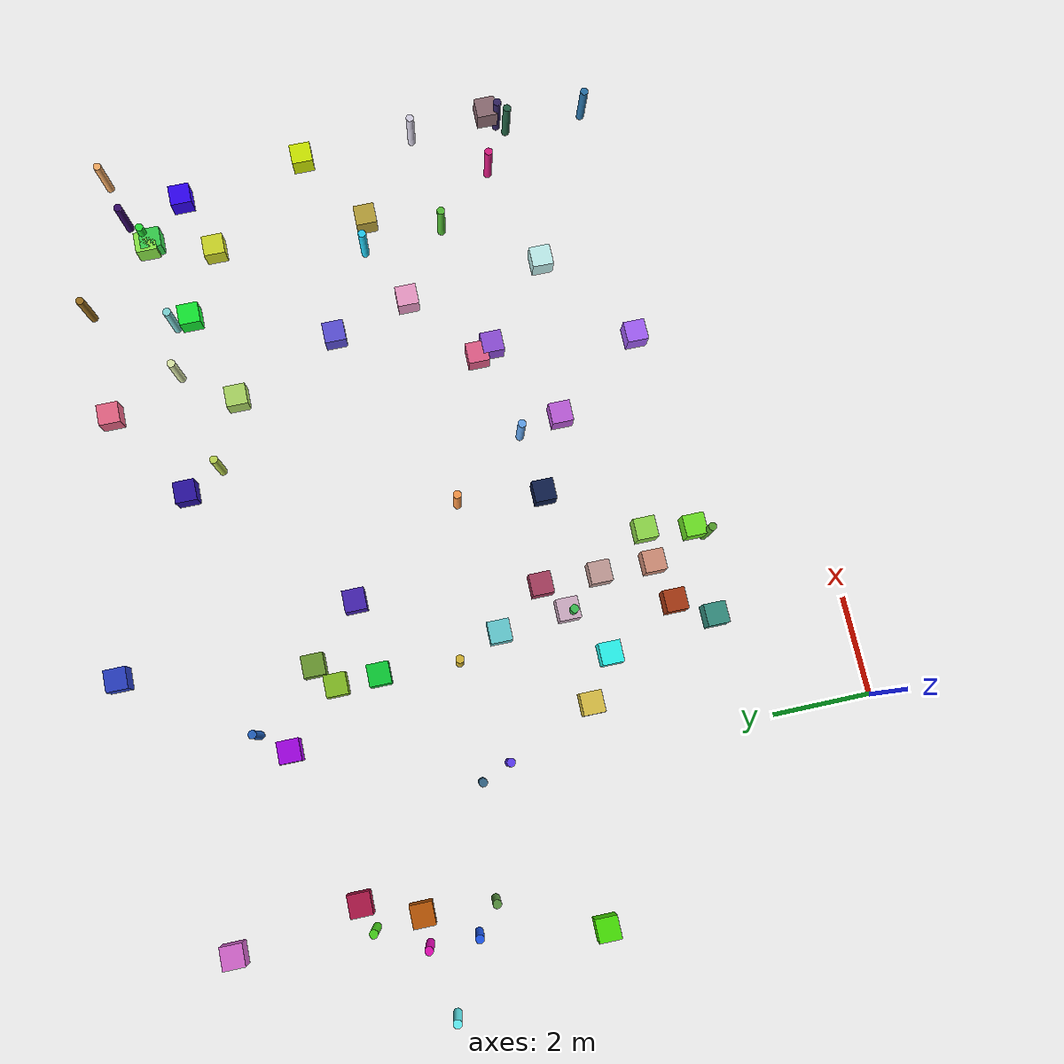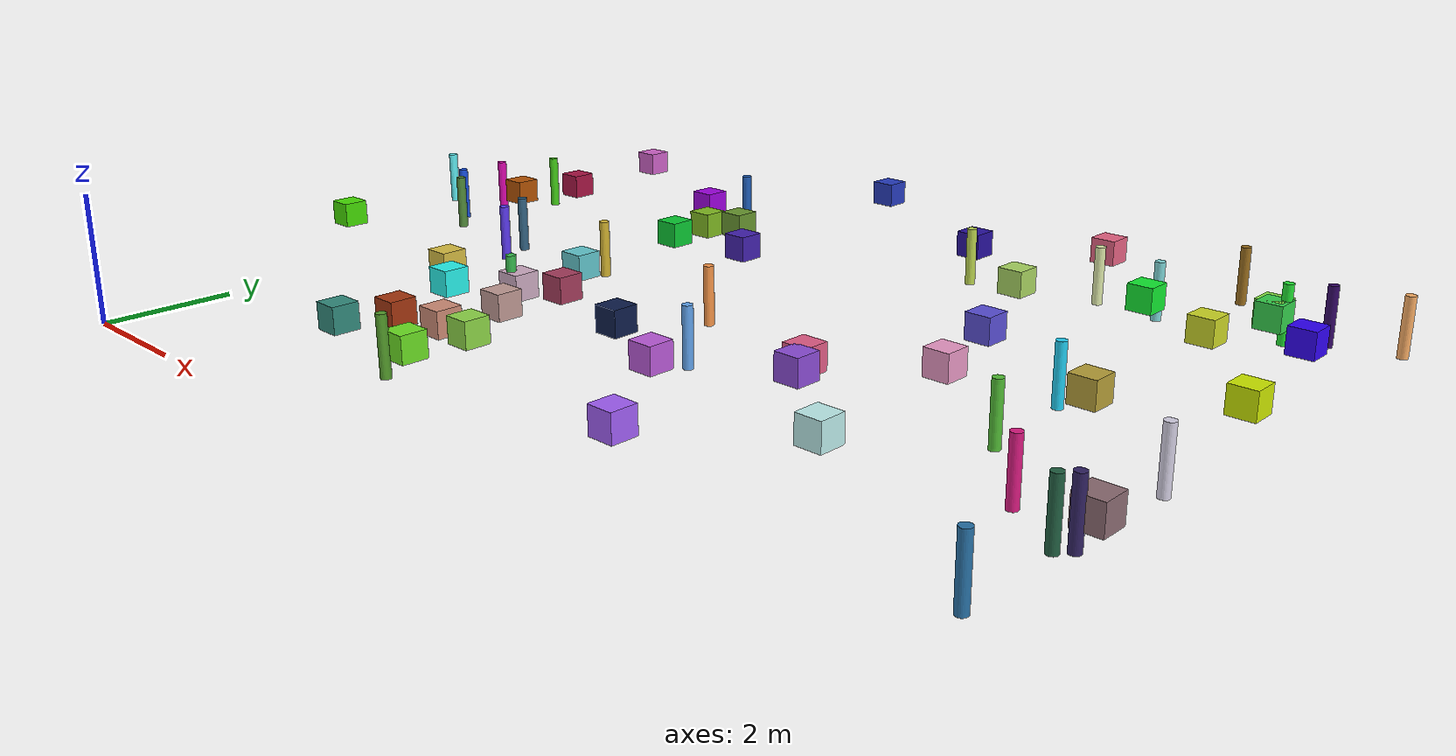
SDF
<sdf version="1.7">
 <world name="warehouse">
  <model name="ground_plane">
   <static>true</static>
   <link name="link">
    <collision name="collision">
     <geometry><plane><normal>0.0 0.0 1</normal><size>1 1</size></plane></geometry>
    </collision>
   </link>
  </model>
  <model name="unit_box_0">
   <static>true</static>
   <pose>2.2 2.64 0 0 0 0</pose>
   <link name="link">
    <collision name="collision">
     <geometry><box><size>0.450000 0.450000 0.450000</size></box></geometry>
    </collision>
    <visual name="visual">
     <geometry><box><size>0.450000 0.450000 0.450000</size></box></geometry>
     <material>
      <ambient>0.2033842654098772 0.556471265459145 0.4994971915833679 1</ambient>
      <diffuse>0.2033842654098772 0.556471265459145 0.4994971915833679 1</diffuse>
      <script><uri>file://media/materials/scripts/gazebo.material</uri><name>Gazebo/RandomColor0</name></script>
     </material>
    </visual>
   </link>
  </model>
  <model name="unit_box_5">
   <static>true</static>
   <pose>3.97 9.73 0 0 0 0</pose>
   <link name="link">
    <collision name="collision">
     <geometry><box><size>0.450000 0.450000 0.450000</size></box></geometry>
    </collision>
    <visual name="visual">
     <geometry><box><size>0.450000 0.450000 0.450000</size></box></geometry>
     <material>
      <ambient>0.2689518017919452 0.13552714101996888 0.6945008653489603 1</ambient>
      <diffuse>0.2689518017919452 0.13552714101996888 0.6945008653489603 1</diffuse>
      <script><uri>file://media/materials/scripts/gazebo.material</uri><name>Gazebo/RandomColor5</name></script>
     </material>
    </visual>
   </link>
  </model>
  <model name="unit_cylinder_6">
   <static>true</static>
   <pose>14.02 4.61 0 0 0 0</pose>
   <link name="link">
    <collision name="collision">
     <geometry><cylinder><radius>0.085000</radius><length>1.000000</length></cylinder></geometry>
    </collision>
    <visual name="visual">
     <geometry><cylinder><radius>0.085000</radius><length>1.000000</length></cylinder></geometry>
     <material>
      <ambient>0.19710142438978373 0.13745172707509656 0.3912315722723817 1</ambient>
      <diffuse>0.19710142438978373 0.13745172707509656 0.3912315722723817 1</diffuse>
      <script><uri>file://media/materials/scripts/gazebo.material</uri><name>Gazebo/RandomColor6</name></script>
     </material>
    </visual>
   </link>
  </model>
  <model name="unit_box_7">
   <static>true</static>
   <pose>2.91 5.54 0 0 0 0</pose>
   <link name="link">
    <collision name="collision">
     <geometry><box><size>0.450000 0.450000 0.450000</size></box></geometry>
    </collision>
    <visual name="visual">
     <geometry><box><size>0.450000 0.450000 0.450000</size></box></geometry>
     <material>
      <ambient>0.8225502708183758 0.6867900643934398 0.7781685932627812 1</ambient>
      <diffuse>0.8225502708183758 0.6867900643934398 0.7781685932627812 1</diffuse>
      <script><uri>file://media/materials/scripts/gazebo.material</uri><name>Gazebo/RandomColor7</name></script>
     </material>
    </visual>
   </link>
  </model>
  <model name="unit_box_9">
   <static>true</static>
   <pose>6.9 12.72 0 0 0 0</pose>
   <link name="link">
    <collision name="collision">
     <geometry><box><size>0.450000 0.450000 0.450000</size></box></geometry>
    </collision>
    <visual name="visual">
     <geometry><box><size>0.450000 0.450000 0.450000</size></box></geometry>
     <material>
      <ambient>0.16291486107056707 0.06930496910042805 0.6325173738668594 1</ambient>
      <diffuse>0.16291486107056707 0.06930496910042805 0.6325173738668594 1</diffuse>
      <script><uri>file://media/materials/scripts/gazebo.material</uri><name>Gazebo/RandomColor9</name></script>
     </material>
    </visual>
   </link>
  </model>
  <model name="unit_cylinder_9">
   <static>true</static>
   <pose>12.91 5.04 0 0 0 0</pose>
   <link name="link">
    <collision name="collision">
     <geometry><cylinder><radius>0.085000</radius><length>1.000000</length></cylinder></geometry>
    </collision>
    <visual name="visual">
     <geometry><cylinder><radius>0.085000</radius><length>1.000000</length></cylinder></geometry>
     <material>
      <ambient>0.8699030829575385 0.10296220234799758 0.5147589166828516 1</ambient>
      <diffuse>0.8699030829575385 0.10296220234799758 0.5147589166828516 1</diffuse>
      <script><uri>file://media/materials/scripts/gazebo.material</uri><name>Gazebo/RandomColor9</name></script>
     </material>
    </visual>
   </link>
  </model>
  <model name="unit_box_10">
   <static>true</static>
   <pose>-1.84 10.73 0 0 0 0</pose>
   <link name="link">
    <collision name="collision">
     <geometry><box><size>0.450000 0.450000 0.450000</size></box></geometry>
    </collision>
    <visual name="visual">
     <geometry><box><size>0.450000 0.450000 0.450000</size></box></geometry>
     <material>
      <ambient>0.6704528873766061 0.0826368071537057 0.27285723767520786 1</ambient>
      <diffuse>0.6704528873766061 0.0826368071537057 0.27285723767520786 1</diffuse>
      <script><uri>file://media/materials/scripts/gazebo.material</uri><name>Gazebo/RandomColor10</name></script>
     </material>
    </visual>
   </link>
  </model>
  <model name="unit_cylinder_10">
   <static>true</static>
   <pose>9.57 12.51 0 0 0 0</pose>
   <link name="link">
    <collision name="collision">
     <geometry><cylinder><radius>0.085000</radius><length>1.000000</length></cylinder></geometry>
    </collision>
    <visual name="visual">
     <geometry><cylinder><radius>0.085000</radius><length>1.000000</length></cylinder></geometry>
     <material>
      <ambient>0.885615581655553 0.9327394628002798 0.6782206357978003 1</ambient>
      <diffuse>0.885615581655553 0.9327394628002798 0.6782206357978003 1</diffuse>
      <script><uri>file://media/materials/scripts/gazebo.material</uri><name>Gazebo/RandomColor10</name></script>
     </material>
    </visual>
   </link>
  </model>
  <model name="unit_cylinder_11">
   <static>true</static>
   <pose>13.84 4.43 0 0 0 0</pose>
   <link name="link">
    <collision name="collision">
     <geometry><cylinder><radius>0.085000</radius><length>1.000000</length></cylinder></geometry>
    </collision>
    <visual name="visual">
     <geometry><cylinder><radius>0.085000</radius><length>1.000000</length></cylinder></geometry>
     <material>
      <ambient>0.1335643459164848 0.3807918756871833 0.26239654531750034 1</ambient>
      <diffuse>0.1335643459164848 0.3807918756871833 0.26239654531750034 1</diffuse>
      <script><uri>file://media/materials/scripts/gazebo.material</uri><name>Gazebo/RandomColor11</name></script>
     </material>
    </visual>
   </link>
  </model>
  <model name="unit_box_14">
   <static>true</static>
   <pose>6.96 4.77 0 0 0 0</pose>
   <link name="link">
    <collision name="collision">
     <geometry><box><size>0.450000 0.450000 0.450000</size></box></geometry>
    </collision>
    <visual name="visual">
     <geometry><box><size>0.450000 0.450000 0.450000</size></box></geometry>
     <material>
      <ambient>0.7507526792527157 0.36376964360259534 0.8690091851841476 1</ambient>
      <diffuse>0.7507526792527157 0.36376964360259534 0.8690091851841476 1</diffuse>
      <script><uri>file://media/materials/scripts/gazebo.material</uri><name>Gazebo/RandomColor14</name></script>
     </material>
    </visual>
   </link>
  </model>
  <model name="unit_box_18">
   <static>true</static>
   <pose>1.29 11.55 0 0 0 0</pose>
   <link name="link">
    <collision name="collision">
     <geometry><box><size>0.450000 0.450000 0.450000</size></box></geometry>
    </collision>
    <visual name="visual">
     <geometry><box><size>0.450000 0.450000 0.450000</size></box></geometry>
     <material>
      <ambient>0.6316145346749856 0.011948659295485164 0.8916331385772003 1</ambient>
      <diffuse>0.6316145346749856 0.011948659295485164 0.8916331385772003 1</diffuse>
      <script><uri>file://media/materials/scripts/gazebo.material</uri><name>Gazebo/RandomColor18</name></script>
     </material>
    </visual>
   </link>
  </model>
  <model name="unit_cylinder_18">
   <static>true</static>
   <pose>14.3 13.37 0 0 0 0</pose>
   <link name="link">
    <collision name="collision">
     <geometry><cylinder><radius>0.085000</radius><length>1.000000</length></cylinder></geometry>
    </collision>
    <visual name="visual">
     <geometry><cylinder><radius>0.085000</radius><length>1.000000</length></cylinder></geometry>
     <material>
      <ambient>0.9898269840798938 0.6891691866875646 0.4007298907136404 1</ambient>
      <diffuse>0.9898269840798938 0.6891691866875646 0.4007298907136404 1</diffuse>
      <script><uri>file://media/materials/scripts/gazebo.material</uri><name>Gazebo/RandomColor18</name></script>
     </material>
    </visual>
   </link>
  </model>
  <model name="unit_box_19">
   <static>true</static>
   <pose>-2.27 9.59 0 0 0 0</pose>
   <link name="link">
    <collision name="collision">
     <geometry><box><size>0.450000 0.450000 0.450000</size></box></geometry>
    </collision>
    <visual name="visual">
     <geometry><box><size>0.450000 0.450000 0.450000</size></box></geometry>
     <material>
      <ambient>0.7203460917915703 0.333728805976085 0.017275516002810187 1</ambient>
      <diffuse>0.7203460917915703 0.333728805976085 0.017275516002810187 1</diffuse>
      <script><uri>file://media/materials/scripts/gazebo.material</uri><name>Gazebo/RandomColor19</name></script>
     </material>
    </visual>
   </link>
  </model>
  <model name="unit_cylinder_19">
   <static>true</static>
   <pose>7.35 11.98 0 0 0 0</pose>
   <link name="link">
    <collision name="collision">
     <geometry><cylinder><radius>0.085000</radius><length>1.000000</length></cylinder></geometry>
    </collision>
    <visual name="visual">
     <geometry><cylinder><radius>0.085000</radius><length>1.000000</length></cylinder></geometry>
     <material>
      <ambient>0.7488498056593774 0.8509600717235335 0.31902658749661494 1</ambient>
      <diffuse>0.7488498056593774 0.8509600717235335 0.31902658749661494 1</diffuse>
      <script><uri>file://media/materials/scripts/gazebo.material</uri><name>Gazebo/RandomColor19</name></script>
     </material>
    </visual>
   </link>
  </model>
  <model name="unit_box_20">
   <static>true</static>
   <pose>12.53 12.68 0 0 0 0</pose>
   <link name="link">
    <collision name="collision">
     <geometry><box><size>0.450000 0.450000 0.450000</size></box></geometry>
    </collision>
    <visual name="visual">
     <geometry><box><size>0.450000 0.450000 0.450000</size></box></geometry>
     <material>
      <ambient>0.5615916827636068 0.9328652311126638 0.28886881989030055 1</ambient>
      <diffuse>0.5615916827636068 0.9328652311126638 0.28886881989030055 1</diffuse>
      <script><uri>file://media/materials/scripts/gazebo.material</uri><name>Gazebo/RandomColor20</name></script>
     </material>
    </visual>
   </link>
  </model>
  <model name="unit_box_21">
   <static>true</static>
   <pose>8.38 2.82 0 0 0 0</pose>
   <link name="link">
    <collision name="collision">
     <geometry><box><size>0.450000 0.450000 0.450000</size></box></geometry>
    </collision>
    <visual name="visual">
     <geometry><box><size>0.450000 0.450000 0.450000</size></box></geometry>
     <material>
      <ambient>0.648935899689679 0.38077725477574254 0.9904537576113294 1</ambient>
      <diffuse>0.648935899689679 0.38077725477574254 0.9904537576113294 1</diffuse>
      <script><uri>file://media/materials/scripts/gazebo.material</uri><name>Gazebo/RandomColor21</name></script>
     </material>
    </visual>
   </link>
  </model>
  <model name="unit_box_23">
   <static>true</static>
   <pose>8.77 5.85 0 0 0 0</pose>
   <link name="link">
    <collision name="collision">
     <geometry><box><size>0.450000 0.450000 0.450000</size></box></geometry>
    </collision>
    <visual name="visual">
     <geometry><box><size>0.450000 0.450000 0.450000</size></box></geometry>
     <material>
      <ambient>0.5628232391834205 0.30659823636977745 0.8610150208894195 1</ambient>
      <diffuse>0.5628232391834205 0.30659823636977745 0.8610150208894195 1</diffuse>
      <script><uri>file://media/materials/scripts/gazebo.material</uri><name>Gazebo/RandomColor23</name></script>
     </material>
    </visual>
   </link>
  </model>
  <model name="unit_cylinder_25">
   <static>true</static>
   <pose>11.33 14.17 0 0 0 0</pose>
   <link name="link">
    <collision name="collision">
     <geometry><cylinder><radius>0.085000</radius><length>1.000000</length></cylinder></geometry>
    </collision>
    <visual name="visual">
     <geometry><cylinder><radius>0.085000</radius><length>1.000000</length></cylinder></geometry>
     <material>
      <ambient>0.6116783902328166 0.43683361299034196 0.11901116937625511 1</ambient>
      <diffuse>0.6116783902328166 0.43683361299034196 0.11901116937625511 1</diffuse>
      <script><uri>file://media/materials/scripts/gazebo.material</uri><name>Gazebo/RandomColor25</name></script>
     </material>
    </visual>
   </link>
  </model>
  <model name="unit_box_26">
   <static>true</static>
   <pose>10.16 7.41 0 0 0 0</pose>
   <link name="link">
    <collision name="collision">
     <geometry><box><size>0.450000 0.450000 0.450000</size></box></geometry>
    </collision>
    <visual name="visual">
     <geometry><box><size>0.450000 0.450000 0.450000</size></box></geometry>
     <material>
      <ambient>0.9336419476547954 0.6104796904993816 0.7869507851211449 1</ambient>
      <diffuse>0.9336419476547954 0.6104796904993816 0.7869507851211449 1</diffuse>
      <script><uri>file://media/materials/scripts/gazebo.material</uri><name>Gazebo/RandomColor26</name></script>
     </material>
    </visual>
   </link>
  </model>
  <model name="unit_cylinder_28">
   <static>true</static>
   <pose>2.34 7.89 0 0 0 0</pose>
   <link name="link">
    <collision name="collision">
     <geometry><cylinder><radius>0.085000</radius><length>1.000000</length></cylinder></geometry>
    </collision>
    <visual name="visual">
     <geometry><cylinder><radius>0.085000</radius><length>1.000000</length></cylinder></geometry>
     <material>
      <ambient>0.8413486732190769 0.7128975307603295 0.19394356529379342 1</ambient>
      <diffuse>0.8413486732190769 0.7128975307603295 0.19394356529379342 1</diffuse>
      <script><uri>file://media/materials/scripts/gazebo.material</uri><name>Gazebo/RandomColor28</name></script>
     </material>
    </visual>
   </link>
  </model>
  <model name="unit_box_29">
   <static>true</static>
   <pose>5.4 5.48 0 0 0 0</pose>
   <link name="link">
    <collision name="collision">
     <geometry><box><size>0.450000 0.450000 0.450000</size></box></geometry>
    </collision>
    <visual name="visual">
     <geometry><box><size>0.450000 0.450000 0.450000</size></box></geometry>
     <material>
      <ambient>0.05638987536805984 0.11969565435877527 0.29882511601250117 1</ambient>
      <diffuse>0.05638987536805984 0.11969565435877527 0.29882511601250117 1</diffuse>
      <script><uri>file://media/materials/scripts/gazebo.material</uri><name>Gazebo/RandomColor29</name></script>
     </material>
    </visual>
   </link>
  </model>
  <model name="unit_cylinder_30">
   <static>true</static>
   <pose>-2.38 10.54 0 0 0 0</pose>
   <link name="link">
    <collision name="collision">
     <geometry><cylinder><radius>0.085000</radius><length>1.000000</length></cylinder></geometry>
    </collision>
    <visual name="visual">
     <geometry><cylinder><radius>0.085000</radius><length>1.000000</length></cylinder></geometry>
     <material>
      <ambient>0.2739373292414402 0.8210564618751169 0.09941739432389352 1</ambient>
      <diffuse>0.2739373292414402 0.8210564618751169 0.09941739432389352 1</diffuse>
      <script><uri>file://media/materials/scripts/gazebo.material</uri><name>Gazebo/RandomColor30</name></script>
     </material>
    </visual>
   </link>
  </model>
  <model name="unit_cylinder_32">
   <static>true</static>
   <pose>-2.88 8.6 0 0 0 0</pose>
   <link name="link">
    <collision name="collision">
     <geometry><cylinder><radius>0.085000</radius><length>1.000000</length></cylinder></geometry>
    </collision>
    <visual name="visual">
     <geometry><cylinder><radius>0.085000</radius><length>1.000000</length></cylinder></geometry>
     <material>
      <ambient>0.10574626899484596 0.3377778595444839 0.9206881930309955 1</ambient>
      <diffuse>0.10574626899484596 0.3377778595444839 0.9206881930309955 1</diffuse>
      <script><uri>file://media/materials/scripts/gazebo.material</uri><name>Gazebo/RandomColor32</name></script>
     </material>
    </visual>
   </link>
  </model>
  <model name="unit_box_33">
   <static>true</static>
   <pose>8.87 14.02 0 0 0 0</pose>
   <link name="link">
    <collision name="collision">
     <geometry><box><size>0.450000 0.450000 0.450000</size></box></geometry>
    </collision>
    <visual name="visual">
     <geometry><box><size>0.450000 0.450000 0.450000</size></box></geometry>
     <material>
      <ambient>0.9151545859385455 0.3940071737118407 0.5230690205111004 1</ambient>
      <diffuse>0.9151545859385455 0.3940071737118407 0.5230690205111004 1</diffuse>
      <script><uri>file://media/materials/scripts/gazebo.material</uri><name>Gazebo/RandomColor33</name></script>
     </material>
    </visual>
   </link>
  </model>
  <model name="unit_box_34">
   <static>true</static>
   <pose>3.52 5.96 0 0 0 0</pose>
   <link name="link">
    <collision name="collision">
     <geometry><box><size>0.450000 0.450000 0.450000</size></box></geometry>
    </collision>
    <visual name="visual">
     <geometry><box><size>0.450000 0.450000 0.450000</size></box></geometry>
     <material>
      <ambient>0.6561970062668703 0.23972032183856584 0.36868919088388585 1</ambient>
      <diffuse>0.6561970062668703 0.23972032183856584 0.36868919088388585 1</diffuse>
      <script><uri>file://media/materials/scripts/gazebo.material</uri><name>Gazebo/RandomColor34</name></script>
     </material>
    </visual>
   </link>
  </model>
  <model name="unit_cylinder_35">
   <static>true</static>
   <pose>14.04 6.55 0 0 0 0</pose>
   <link name="link">
    <collision name="collision">
     <geometry><cylinder><radius>0.085000</radius><length>1.000000</length></cylinder></geometry>
    </collision>
    <visual name="visual">
     <geometry><cylinder><radius>0.085000</radius><length>1.000000</length></cylinder></geometry>
     <material>
      <ambient>0.8516509255849015 0.8344352301881542 0.9122549387257622 1</ambient>
      <diffuse>0.8516509255849015 0.8344352301881542 0.9122549387257622 1</diffuse>
      <script><uri>file://media/materials/scripts/gazebo.material</uri><name>Gazebo/RandomColor35</name></script>
     </material>
    </visual>
   </link>
  </model>
  <model name="unit_box_39">
   <static>true</static>
   <pose>2.75 6.99 0 0 0 0</pose>
   <link name="link">
    <collision name="collision">
     <geometry><box><size>0.450000 0.450000 0.450000</size></box></geometry>
    </collision>
    <visual name="visual">
     <geometry><box><size>0.450000 0.450000 0.450000</size></box></geometry>
     <material>
      <ambient>0.3951660861365789 0.801294135777029 0.823667528386179 1</ambient>
      <diffuse>0.3951660861365789 0.801294135777029 0.823667528386179 1</diffuse>
      <script><uri>file://media/materials/scripts/gazebo.material</uri><name>Gazebo/RandomColor39</name></script>
     </material>
    </visual>
   </link>
  </model>
  <model name="unit_box_40">
   <static>true</static>
   <pose>8.72 11.35 0 0 0 0</pose>
   <link name="link">
    <collision name="collision">
     <geometry><box><size>0.450000 0.450000 0.450000</size></box></geometry>
    </collision>
    <visual name="visual">
     <geometry><box><size>0.450000 0.450000 0.450000</size></box></geometry>
     <material>
      <ambient>0.6759410792848861 0.8501200170097077 0.3898911122239328 1</ambient>
      <diffuse>0.6759410792848861 0.8501200170097077 0.3898911122239328 1</diffuse>
      <script><uri>file://media/materials/scripts/gazebo.material</uri><name>Gazebo/RandomColor40</name></script>
     </material>
    </visual>
   </link>
  </model>
  <model name="unit_cylinder_40">
   <static>true</static>
   <pose>-4.26 9.32 0 0 0 0</pose>
   <link name="link">
    <collision name="collision">
     <geometry><cylinder><radius>0.085000</radius><length>1.000000</length></cylinder></geometry>
    </collision>
    <visual name="visual">
     <geometry><cylinder><radius>0.085000</radius><length>1.000000</length></cylinder></geometry>
     <material>
      <ambient>0.3843539791351842 0.9536394807439266 0.9759130508711401 1</ambient>
      <diffuse>0.3843539791351842 0.9536394807439266 0.9759130508711401 1</diffuse>
      <script><uri>file://media/materials/scripts/gazebo.material</uri><name>Gazebo/RandomColor40</name></script>
     </material>
    </visual>
   </link>
  </model>
  <model name="unit_cylinder_42">
   <static>true</static>
   <pose>11.6 8.08 0 0 0 0</pose>
   <link name="link">
    <collision name="collision">
     <geometry><cylinder><radius>0.085000</radius><length>1.000000</length></cylinder></geometry>
    </collision>
    <visual name="visual">
     <geometry><cylinder><radius>0.085000</radius><length>1.000000</length></cylinder></geometry>
     <material>
      <ambient>0.13713514379760627 0.8216387017250131 0.9638626337590158 1</ambient>
      <diffuse>0.13713514379760627 0.8216387017250131 0.9638626337590158 1</diffuse>
      <script><uri>file://media/materials/scripts/gazebo.material</uri><name>Gazebo/RandomColor42</name></script>
     </material>
    </visual>
   </link>
  </model>
  <model name="unit_box_44">
   <static>true</static>
   <pose>2.38 10.41 0 0 0 0</pose>
   <link name="link">
    <collision name="collision">
     <geometry><box><size>0.450000 0.450000 0.450000</size></box></geometry>
    </collision>
    <visual name="visual">
     <geometry><box><size>0.450000 0.450000 0.450000</size></box></geometry>
     <material>
      <ambient>0.5132324300321827 0.7407210795222838 0.13462571224199327 1</ambient>
      <diffuse>0.5132324300321827 0.7407210795222838 0.13462571224199327 1</diffuse>
      <script><uri>file://media/materials/scripts/gazebo.material</uri><name>Gazebo/RandomColor44</name></script>
     </material>
    </visual>
   </link>
  </model>
  <model name="unit_cylinder_46">
   <static>true</static>
   <pose>-0.08 7.94 0 0 0 0</pose>
   <link name="link">
    <collision name="collision">
     <geometry><cylinder><radius>0.085000</radius><length>1.000000</length></cylinder></geometry>
    </collision>
    <visual name="visual">
     <geometry><cylinder><radius>0.085000</radius><length>1.000000</length></cylinder></geometry>
     <material>
      <ambient>0.20671417243882062 0.40048652097796344 0.5293546683485737 1</ambient>
      <diffuse>0.20671417243882062 0.40048652097796344 0.5293546683485737 1</diffuse>
      <script><uri>file://media/materials/scripts/gazebo.material</uri><name>Gazebo/RandomColor46</name></script>
     </material>
    </visual>
   </link>
  </model>
  <model name="unit_box_47">
   <static>true</static>
   <pose>3.38 14.68 0 0 0 0</pose>
   <link name="link">
    <collision name="collision">
     <geometry><box><size>0.450000 0.450000 0.450000</size></box></geometry>
    </collision>
    <visual name="visual">
     <geometry><box><size>0.450000 0.450000 0.450000</size></box></geometry>
     <material>
      <ambient>0.15429274105347734 0.241832571143616 0.7585863440661619 1</ambient>
      <diffuse>0.15429274105347734 0.241832571143616 0.7585863440661619 1</diffuse>
      <script><uri>file://media/materials/scripts/gazebo.material</uri><name>Gazebo/RandomColor47</name></script>
     </material>
    </visual>
   </link>
  </model>
  <model name="unit_box_48">
   <static>true</static>
   <pose>12.17 7.93 0 0 0 0</pose>
   <link name="link">
    <collision name="collision">
     <geometry><box><size>0.450000 0.450000 0.450000</size></box></geometry>
    </collision>
    <visual name="visual">
     <geometry><box><size>0.450000 0.450000 0.450000</size></box></geometry>
     <material>
      <ambient>0.7269027067690111 0.634857965043936 0.22534632709918145 1</ambient>
      <diffuse>0.7269027067690111 0.634857965043936 0.22534632709918145 1</diffuse>
      <script><uri>file://media/materials/scripts/gazebo.material</uri><name>Gazebo/RandomColor48</name></script>
     </material>
    </visual>
   </link>
  </model>
  <model name="unit_box_50">
   <static>true</static>
   <pose>8.61 6.2 0 0 0 0</pose>
   <link name="link">
    <collision name="collision">
     <geometry><box><size>0.450000 0.450000 0.450000</size></box></geometry>
    </collision>
    <visual name="visual">
     <geometry><box><size>0.450000 0.450000 0.450000</size></box></geometry>
     <material>
      <ambient>0.9015817525152461 0.37107414604925215 0.5404490724521022 1</ambient>
      <diffuse>0.9015817525152461 0.37107414604925215 0.5404490724521022 1</diffuse>
      <script><uri>file://media/materials/scripts/gazebo.material</uri><name>Gazebo/RandomColor50</name></script>
     </material>
    </visual>
   </link>
  </model>
  <model name="unit_cylinder_51">
   <static>true</static>
   <pose>5.61 7.26 0 0 0 0</pose>
   <link name="link">
    <collision name="collision">
     <geometry><cylinder><radius>0.085000</radius><length>1.000000</length></cylinder></geometry>
    </collision>
    <visual name="visual">
     <geometry><cylinder><radius>0.085000</radius><length>1.000000</length></cylinder></geometry>
     <material>
      <ambient>0.9885812600704443 0.599290991571293 0.28891781474713096 1</ambient>
      <diffuse>0.9885812600704443 0.599290991571293 0.28891781474713096 1</diffuse>
      <script><uri>file://media/materials/scripts/gazebo.material</uri><name>Gazebo/RandomColor51</name></script>
     </material>
    </visual>
   </link>
  </model>
  <model name="unit_cylinder_55">
   <static>true</static>
   <pose>-2.89 9.58 0 0 0 0</pose>
   <link name="link">
    <collision name="collision">
     <geometry><cylinder><radius>0.085000</radius><length>1.000000</length></cylinder></geometry>
    </collision>
    <visual name="visual">
     <geometry><cylinder><radius>0.085000</radius><length>1.000000</length></cylinder></geometry>
     <material>
      <ambient>0.8865615055661613 0.03778308459162649 0.7076443982640848 1</ambient>
      <diffuse>0.8865615055661613 0.03778308459162649 0.7076443982640848 1</diffuse>
      <script><uri>file://media/materials/scripts/gazebo.material</uri><name>Gazebo/RandomColor55</name></script>
     </material>
    </visual>
   </link>
  </model>
  <model name="unit_box_56">
   <static>true</static>
   <pose>1.87 4.9 0 0 0 0</pose>
   <link name="link">
    <collision name="collision">
     <geometry><box><size>0.450000 0.450000 0.450000</size></box></geometry>
    </collision>
    <visual name="visual">
     <geometry><box><size>0.450000 0.450000 0.450000</size></box></geometry>
     <material>
      <ambient>0.15994326369055545 0.9753368484779675 0.9478532158225786 1</ambient>
      <diffuse>0.15994326369055545 0.9753368484779675 0.9478532158225786 1</diffuse>
      <script><uri>file://media/materials/scripts/gazebo.material</uri><name>Gazebo/RandomColor56</name></script>
     </material>
    </visual>
   </link>
  </model>
  <model name="unit_cylinder_57">
   <static>true</static>
   <pose>13.26 13.08 0 0 0 0</pose>
   <link name="link">
    <collision name="collision">
     <geometry><cylinder><radius>0.085000</radius><length>1.000000</length></cylinder></geometry>
    </collision>
    <visual name="visual">
     <geometry><cylinder><radius>0.085000</radius><length>1.000000</length></cylinder></geometry>
     <material>
      <ambient>0.20894913343574295 0.0355838686316402 0.40716494664876357 1</ambient>
      <diffuse>0.20894913343574295 0.0355838686316402 0.40716494664876357 1</diffuse>
      <script><uri>file://media/materials/scripts/gazebo.material</uri><name>Gazebo/RandomColor57</name></script>
     </material>
    </visual>
   </link>
  </model>
  <model name="unit_box_58">
   <static>true</static>
   <pose>2.64 3.38 0 0 0 0</pose>
   <link name="link">
    <collision name="collision">
     <geometry><box><size>0.450000 0.450000 0.450000</size></box></geometry>
    </collision>
    <visual name="visual">
     <geometry><box><size>0.450000 0.450000 0.450000</size></box></geometry>
     <material>
      <ambient>0.6580203170563769 0.2193499420225915 0.07032080247642036 1</ambient>
      <diffuse>0.6580203170563769 0.2193499420225915 0.07032080247642036 1</diffuse>
      <script><uri>file://media/materials/scripts/gazebo.material</uri><name>Gazebo/RandomColor58</name></script>
     </material>
    </visual>
   </link>
  </model>
  <model name="unit_box_60">
   <static>true</static>
   <pose>9.68 9.08 0 0 0 0</pose>
   <link name="link">
    <collision name="collision">
     <geometry><box><size>0.450000 0.450000 0.450000</size></box></geometry>
    </collision>
    <visual name="visual">
     <geometry><box><size>0.450000 0.450000 0.450000</size></box></geometry>
     <material>
      <ambient>0.36209507130588725 0.3190649258151007 0.854247722905171 1</ambient>
      <diffuse>0.36209507130588725 0.3190649258151007 0.854247722905171 1</diffuse>
      <script><uri>file://media/materials/scripts/gazebo.material</uri><name>Gazebo/RandomColor60</name></script>
     </material>
    </visual>
   </link>
  </model>
  <model name="unit_box_61">
   <static>true</static>
   <pose>-3.25 6.17 0 0 0 0</pose>
   <link name="link">
    <collision name="collision">
     <geometry><box><size>0.450000 0.450000 0.450000</size></box></geometry>
    </collision>
    <visual name="visual">
     <geometry><box><size>0.450000 0.450000 0.450000</size></box></geometry>
     <material>
      <ambient>0.2809054857347524 0.8890704436685503 0.01581528339858007 1</ambient>
      <diffuse>0.2809054857347524 0.8890704436685503 0.01581528339858007 1</diffuse>
      <script><uri>file://media/materials/scripts/gazebo.material</uri><name>Gazebo/RandomColor61</name></script>
     </material>
    </visual>
   </link>
  </model>
  <model name="unit_cylinder_61">
   <static>true</static>
   <pose>0.18 7.33 0 0 0 0</pose>
   <link name="link">
    <collision name="collision">
     <geometry><cylinder><radius>0.085000</radius><length>1.000000</length></cylinder></geometry>
    </collision>
    <visual name="visual">
     <geometry><cylinder><radius>0.085000</radius><length>1.000000</length></cylinder></geometry>
     <material>
      <ambient>0.3721209136098299 0.23604411504084277 0.9672464121393834 1</ambient>
      <diffuse>0.3721209136098299 0.23604411504084277 0.9672464121393834 1</diffuse>
      <script><uri>file://media/materials/scripts/gazebo.material</uri><name>Gazebo/RandomColor61</name></script>
     </material>
    </visual>
   </link>
  </model>
  <model name="unit_box_63">
   <static>true</static>
   <pose>2.85 10.78 0 0 0 0</pose>
   <link name="link">
    <collision name="collision">
     <geometry><box><size>0.450000 0.450000 0.450000</size></box></geometry>
    </collision>
    <visual name="visual">
     <geometry><box><size>0.450000 0.450000 0.450000</size></box></geometry>
     <material>
      <ambient>0.4184725362532564 0.6004082413104856 0.18853642131856196 1</ambient>
      <diffuse>0.4184725362532564 0.6004082413104856 0.18853642131856196 1</diffuse>
      <script><uri>file://media/materials/scripts/gazebo.material</uri><name>Gazebo/RandomColor63</name></script>
     </material>
    </visual>
   </link>
  </model>
  <model name="unit_box_65">
   <static>true</static>
   <pose>2.41 9.53 0 0 0 0</pose>
   <link name="link">
    <collision name="collision">
     <geometry><box><size>0.450000 0.450000 0.450000</size></box></geometry>
    </collision>
    <visual name="visual">
     <geometry><box><size>0.450000 0.450000 0.450000</size></box></geometry>
     <material>
      <ambient>0.045390343734694416 0.8016165631619252 0.20699059190121538 1</ambient>
      <diffuse>0.045390343734694416 0.8016165631619252 0.20699059190121538 1</diffuse>
      <script><uri>file://media/materials/scripts/gazebo.material</uri><name>Gazebo/RandomColor65</name></script>
     </material>
    </visual>
   </link>
  </model>
  <model name="unit_cylinder_66">
   <static>true</static>
   <pose>3.9 2.35 0 0 0 0</pose>
   <link name="link">
    <collision name="collision">
     <geometry><cylinder><radius>0.085000</radius><length>1.000000</length></cylinder></geometry>
    </collision>
    <visual name="visual">
     <geometry><cylinder><radius>0.085000</radius><length>1.000000</length></cylinder></geometry>
     <material>
      <ambient>0.3331382715199619 0.6241674359115301 0.1723615809121083 1</ambient>
      <diffuse>0.3331382715199619 0.6241674359115301 0.1723615809121083 1</diffuse>
      <script><uri>file://media/materials/scripts/gazebo.material</uri><name>Gazebo/RandomColor66</name></script>
     </material>
    </visual>
   </link>
  </model>
  <model name="unit_box_69">
   <static>true</static>
   <pose>3.51 3.61 0 0 0 0</pose>
   <link name="link">
    <collision name="collision">
     <geometry><box><size>0.450000 0.450000 0.450000</size></box></geometry>
    </collision>
    <visual name="visual">
     <geometry><box><size>0.450000 0.450000 0.450000</size></box></geometry>
     <material>
      <ambient>0.824562085641074 0.5606214405275664 0.47259588171056455 1</ambient>
      <diffuse>0.824562085641074 0.5606214405275664 0.47259588171056455 1</diffuse>
      <script><uri>file://media/materials/scripts/gazebo.material</uri><name>Gazebo/RandomColor69</name></script>
     </material>
    </visual>
   </link>
  </model>
  <model name="unit_box_71">
   <static>true</static>
   <pose>13.88 9.03 0 0 0 0</pose>
   <link name="link">
    <collision name="collision">
     <geometry><box><size>0.450000 0.450000 0.450000</size></box></geometry>
    </collision>
    <visual name="visual">
     <geometry><box><size>0.450000 0.450000 0.450000</size></box></geometry>
     <material>
      <ambient>0.8187584120570423 0.9268676912600193 0.001105688300620522 1</ambient>
      <diffuse>0.8187584120570423 0.9268676912600193 0.001105688300620522 1</diffuse>
      <script><uri>file://media/materials/scripts/gazebo.material</uri><name>Gazebo/RandomColor71</name></script>
     </material>
    </visual>
   </link>
  </model>
  <model name="unit_box_74">
   <static>true</static>
   <pose>12.15 11.26 0 0 0 0</pose>
   <link name="link">
    <collision name="collision">
     <geometry><box><size>0.450000 0.450000 0.450000</size></box></geometry>
    </collision>
    <visual name="visual">
     <geometry><box><size>0.450000 0.450000 0.450000</size></box></geometry>
     <material>
      <ambient>0.8143758090834818 0.8557072698208131 0.15492939490167124 1</ambient>
      <diffuse>0.8143758090834818 0.8557072698208131 0.15492939490167124 1</diffuse>
      <script><uri>file://media/materials/scripts/gazebo.material</uri><name>Gazebo/RandomColor74</name></script>
     </material>
    </visual>
   </link>
  </model>
  <model name="unit_box_76">
   <static>true</static>
   <pose>10.71 12.03 0 0 0 0</pose>
   <link name="link">
    <collision name="collision">
     <geometry><box><size>0.450000 0.450000 0.450000</size></box></geometry>
    </collision>
    <visual name="visual">
     <geometry><box><size>0.450000 0.450000 0.450000</size></box></geometry>
     <material>
      <ambient>0.0738579756518325 0.930841861896346 0.19800010016160507 1</ambient>
      <diffuse>0.0738579756518325 0.930841861896346 0.19800010016160507 1</diffuse>
      <script><uri>file://media/materials/scripts/gazebo.material</uri><name>Gazebo/RandomColor76</name></script>
     </material>
    </visual>
   </link>
  </model>
  <model name="unit_cylinder_76">
   <static>true</static>
   <pose>13.88 2.69 0 0 0 0</pose>
   <link name="link">
    <collision name="collision">
     <geometry><cylinder><radius>0.085000</radius><length>1.000000</length></cylinder></geometry>
    </collision>
    <visual name="visual">
     <geometry><cylinder><radius>0.085000</radius><length>1.000000</length></cylinder></geometry>
     <material>
      <ambient>0.16003926130817803 0.45378381329527273 0.6662681032382424 1</ambient>
      <diffuse>0.16003926130817803 0.45378381329527273 0.6662681032382424 1</diffuse>
      <script><uri>file://media/materials/scripts/gazebo.material</uri><name>Gazebo/RandomColor76</name></script>
     </material>
    </visual>
   </link>
  </model>
  <model name="unit_box_78">
   <static>true</static>
   <pose>-2.27 13.28 0 0 0 0</pose>
   <link name="link">
    <collision name="collision">
     <geometry><box><size>0.450000 0.450000 0.450000</size></box></geometry>
    </collision>
    <visual name="visual">
     <geometry><box><size>0.450000 0.450000 0.450000</size></box></geometry>
     <material>
      <ambient>0.828180254728809 0.3938979752982994 0.8024748171597511 1</ambient>
      <diffuse>0.828180254728809 0.3938979752982994 0.8024748171597511 1</diffuse>
      <script><uri>file://media/materials/scripts/gazebo.material</uri><name>Gazebo/RandomColor78</name></script>
     </material>
    </visual>
   </link>
  </model>
  <model name="unit_cylinder_78">
   <static>true</static>
   <pose>12.72 12.7 0 0 0 0</pose>
   <link name="link">
    <collision name="collision">
     <geometry><cylinder><radius>0.085000</radius><length>1.000000</length></cylinder></geometry>
    </collision>
    <visual name="visual">
     <geometry><cylinder><radius>0.085000</radius><length>1.000000</length></cylinder></geometry>
     <material>
      <ambient>0.14125542260650903 0.8945794034681307 0.2089057549957577 1</ambient>
      <diffuse>0.14125542260650903 0.8945794034681307 0.2089057549957577 1</diffuse>
      <script><uri>file://media/materials/scripts/gazebo.material</uri><name>Gazebo/RandomColor78</name></script>
     </material>
    </visual>
   </link>
  </model>
  <model name="unit_box_82">
   <static>true</static>
   <pose>13.46 11.78 0 0 0 0</pose>
   <link name="link">
    <collision name="collision">
     <geometry><box><size>0.450000 0.450000 0.450000</size></box></geometry>
    </collision>
    <visual name="visual">
     <geometry><box><size>0.450000 0.450000 0.450000</size></box></geometry>
     <material>
      <ambient>0.19463357051917607 0.010043854863393542 0.9700948263514124 1</ambient>
      <diffuse>0.19463357051917607 0.010043854863393542 0.9700948263514124 1</diffuse>
      <script><uri>file://media/materials/scripts/gazebo.material</uri><name>Gazebo/RandomColor82</name></script>
     </material>
    </visual>
   </link>
  </model>
  <model name="unit_cylinder_84">
   <static>true</static>
   <pose>-2.33 8.15 0 0 0 0</pose>
   <link name="link">
    <collision name="collision">
     <geometry><cylinder><radius>0.085000</radius><length>1.000000</length></cylinder></geometry>
    </collision>
    <visual name="visual">
     <geometry><cylinder><radius>0.085000</radius><length>1.000000</length></cylinder></geometry>
     <material>
      <ambient>0.3346638728229293 0.5649351059580107 0.240813113810871 1</ambient>
      <diffuse>0.3346638728229293 0.5649351059580107 0.240813113810871 1</diffuse>
      <script><uri>file://media/materials/scripts/gazebo.material</uri><name>Gazebo/RandomColor84</name></script>
     </material>
    </visual>
   </link>
  </model>
  <model name="unit_box_86">
   <static>true</static>
   <pose>14.13 4.84 0 0 0 0</pose>
   <link name="link">
    <collision name="collision">
     <geometry><box><size>0.450000 0.450000 0.450000</size></box></geometry>
    </collision>
    <visual name="visual">
     <geometry><box><size>0.450000 0.450000 0.450000</size></box></geometry>
     <material>
      <ambient>0.5578199647362369 0.42802003967376523 0.455043519614971 1</ambient>
      <diffuse>0.5578199647362369 0.42802003967376523 0.455043519614971 1</diffuse>
      <script><uri>file://media/materials/scripts/gazebo.material</uri><name>Gazebo/RandomColor86</name></script>
     </material>
    </visual>
   </link>
  </model>
  <model name="unit_box_87">
   <static>true</static>
   <pose>12.59 12.57 0 0 0 0</pose>
   <link name="link">
    <collision name="collision">
     <geometry><box><size>0.450000 0.450000 0.450000</size></box></geometry>
    </collision>
    <visual name="visual">
     <geometry><box><size>0.450000 0.450000 0.450000</size></box></geometry>
     <material>
      <ambient>0.21229671628525348 0.8269326041974822 0.3047199864074035 1</ambient>
      <diffuse>0.21229671628525348 0.8269326041974822 0.3047199864074035 1</diffuse>
      <script><uri>file://media/materials/scripts/gazebo.material</uri><name>Gazebo/RandomColor87</name></script>
     </material>
    </visual>
   </link>
  </model>
  <model name="unit_cylinder_87">
   <static>true</static>
   <pose>2.85 5.45 0 0 0 0</pose>
   <link name="link">
    <collision name="collision">
     <geometry><cylinder><radius>0.085000</radius><length>1.000000</length></cylinder></geometry>
    </collision>
    <visual name="visual">
     <geometry><cylinder><radius>0.085000</radius><length>1.000000</length></cylinder></geometry>
     <material>
      <ambient>0.22820515140132447 0.7497682268707976 0.31721986902050325 1</ambient>
      <diffuse>0.22820515140132447 0.7497682268707976 0.31721986902050325 1</diffuse>
      <script><uri>file://media/materials/scripts/gazebo.material</uri><name>Gazebo/RandomColor87</name></script>
     </material>
    </visual>
   </link>
  </model>
  <model name="unit_box_90">
   <static>true</static>
   <pose>4.2 3.62 0 0 0 0</pose>
   <link name="link">
    <collision name="collision">
     <geometry><box><size>0.450000 0.450000 0.450000</size></box></geometry>
    </collision>
    <visual name="visual">
     <geometry><box><size>0.450000 0.450000 0.450000</size></box></geometry>
     <material>
      <ambient>0.5680136487330918 0.8571318180392393 0.286074721096668 1</ambient>
      <diffuse>0.5680136487330918 0.8571318180392393 0.286074721096668 1</diffuse>
      <script><uri>file://media/materials/scripts/gazebo.material</uri><name>Gazebo/RandomColor90</name></script>
     </material>
    </visual>
   </link>
  </model>
  <model name="unit_box_92">
   <static>true</static>
   <pose>3.51 4.74 0 0 0 0</pose>
   <link name="link">
    <collision name="collision">
     <geometry><box><size>0.450000 0.450000 0.450000</size></box></geometry>
    </collision>
    <visual name="visual">
     <geometry><box><size>0.450000 0.450000 0.450000</size></box></geometry>
     <material>
      <ambient>0.7694515881069095 0.6163399034350405 0.5944672201641236 1</ambient>
      <diffuse>0.7694515881069095 0.6163399034350405 0.5944672201641236 1</diffuse>
      <script><uri>file://media/materials/scripts/gazebo.material</uri><name>Gazebo/RandomColor92</name></script>
     </material>
    </visual>
   </link>
  </model>
  <model name="unit_cylinder_92">
   <static>true</static>
   <pose>1.74 12.15 0 0 0 0</pose>
   <link name="link">
    <collision name="collision">
     <geometry><cylinder><radius>0.085000</radius><length>1.000000</length></cylinder></geometry>
    </collision>
    <visual name="visual">
     <geometry><cylinder><radius>0.085000</radius><length>1.000000</length></cylinder></geometry>
     <material>
      <ambient>0.12805864416701374 0.3810364507772983 0.7437020437932157 1</ambient>
      <diffuse>0.12805864416701374 0.3810364507772983 0.7437020437932157 1</diffuse>
      <script><uri>file://media/materials/scripts/gazebo.material</uri><name>Gazebo/RandomColor92</name></script>
     </material>
    </visual>
   </link>
  </model>
  <model name="unit_box_93">
   <static>true</static>
   <pose>10.45 4.41 0 0 0 0</pose>
   <link name="link">
    <collision name="collision">
     <geometry><box><size>0.450000 0.450000 0.450000</size></box></geometry>
    </collision>
    <visual name="visual">
     <geometry><box><size>0.450000 0.450000 0.450000</size></box></geometry>
     <material>
      <ambient>0.7615531449889187 0.9559830167199135 0.9493034124523776 1</ambient>
      <diffuse>0.7615531449889187 0.9559830167199135 0.9493034124523776 1</diffuse>
      <script><uri>file://media/materials/scripts/gazebo.material</uri><name>Gazebo/RandomColor93</name></script>
     </material>
    </visual>
   </link>
  </model>
  <model name="unit_cylinder_93">
   <static>true</static>
   <pose>11.77 6.33 0 0 0 0</pose>
   <link name="link">
    <collision name="collision">
     <geometry><cylinder><radius>0.085000</radius><length>1.000000</length></cylinder></geometry>
    </collision>
    <visual name="visual">
     <geometry><cylinder><radius>0.085000</radius><length>1.000000</length></cylinder></geometry>
     <material>
      <ambient>0.32636967599158173 0.750783775187747 0.21244744529878412 1</ambient>
      <diffuse>0.32636967599158173 0.750783775187747 0.21244744529878412 1</diffuse>
      <script><uri>file://media/materials/scripts/gazebo.material</uri><name>Gazebo/RandomColor93</name></script>
     </material>
    </visual>
   </link>
  </model>
  <model name="unit_cylinder_94">
   <static>true</static>
   <pose>6.8 5.65 0 0 0 0</pose>
   <link name="link">
    <collision name="collision">
     <geometry><cylinder><radius>0.085000</radius><length>1.000000</length></cylinder></geometry>
    </collision>
    <visual name="visual">
     <geometry><cylinder><radius>0.085000</radius><length>1.000000</length></cylinder></geometry>
     <material>
      <ambient>0.38753111278944696 0.6551107471461437 0.9446430121772605 1</ambient>
      <diffuse>0.38753111278944696 0.6551107471461437 0.9446430121772605 1</diffuse>
      <script><uri>file://media/materials/scripts/gazebo.material</uri><name>Gazebo/RandomColor94</name></script>
     </material>
    </visual>
   </link>
  </model>
  <model name="unit_box_95">
   <static>true</static>
   <pose>4.06 2.62 0 0 0 0</pose>
   <link name="link">
    <collision name="collision">
     <geometry><box><size>0.450000 0.450000 0.450000</size></box></geometry>
    </collision>
    <visual name="visual">
     <geometry><box><size>0.450000 0.450000 0.450000</size></box></geometry>
     <material>
      <ambient>0.43283017617909325 0.8958322943141359 0.14336242561904766 1</ambient>
      <diffuse>0.43283017617909325 0.8958322943141359 0.14336242561904766 1</diffuse>
      <script><uri>file://media/materials/scripts/gazebo.material</uri><name>Gazebo/RandomColor95</name></script>
     </material>
    </visual>
   </link>
  </model>
  <model name="unit_cylinder_95">
   <static>true</static>
   <pose>10.71 12.42 0 0 0 0</pose>
   <link name="link">
    <collision name="collision">
     <geometry><cylinder><radius>0.085000</radius><length>1.000000</length></cylinder></geometry>
    </collision>
    <visual name="visual">
     <geometry><cylinder><radius>0.085000</radius><length>1.000000</length></cylinder></geometry>
     <material>
      <ambient>0.5039964894463617 0.8576772095821807 0.8610244051749485 1</ambient>
      <diffuse>0.5039964894463617 0.8576772095821807 0.8610244051749485 1</diffuse>
      <script><uri>file://media/materials/scripts/gazebo.material</uri><name>Gazebo/RandomColor95</name></script>
     </material>
    </visual>
   </link>
  </model>
  <model name="unit_box_99">
   <static>true</static>
   <pose>0.98 5.49 0 0 0 0</pose>
   <link name="link">
    <collision name="collision">
     <geometry><box><size>0.450000 0.450000 0.450000</size></box></geometry>
    </collision>
    <visual name="visual">
     <geometry><box><size>0.450000 0.450000 0.450000</size></box></geometry>
     <material>
      <ambient>0.859294111354448 0.756118091127698 0.26794274211119407 1</ambient>
      <diffuse>0.859294111354448 0.756118091127698 0.26794274211119407 1</diffuse>
      <script><uri>file://media/materials/scripts/gazebo.material</uri><name>Gazebo/RandomColor99</name></script>
     </material>
    </visual>
   </link>
  </model>
 </world>
</sdf>
